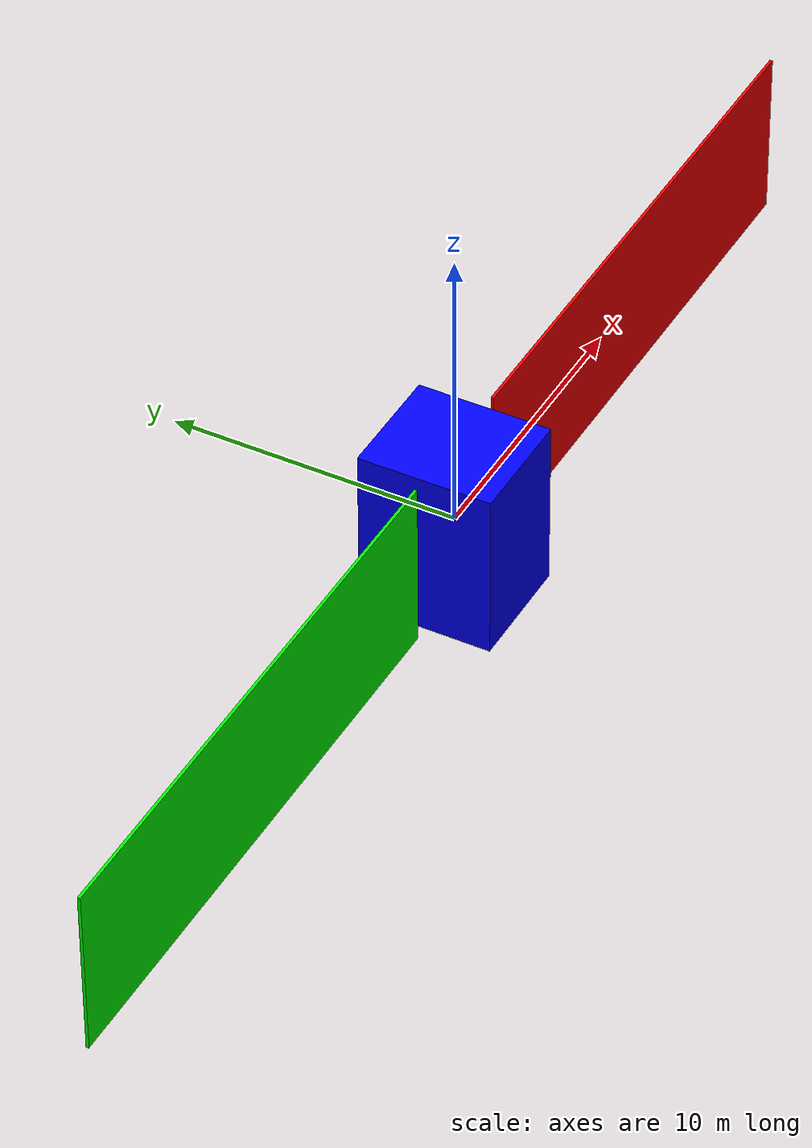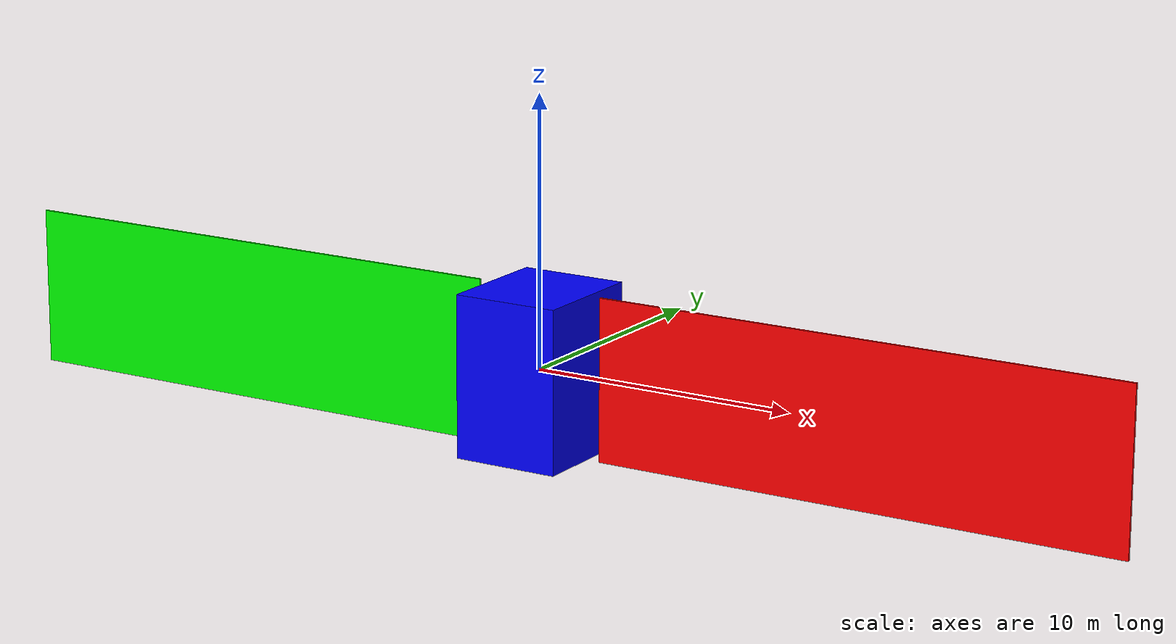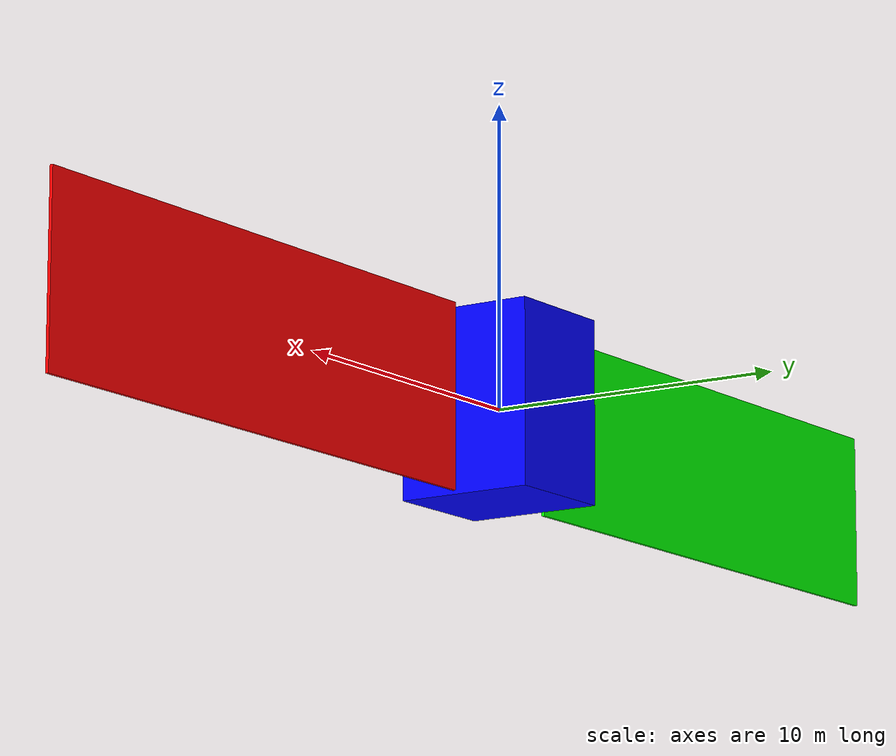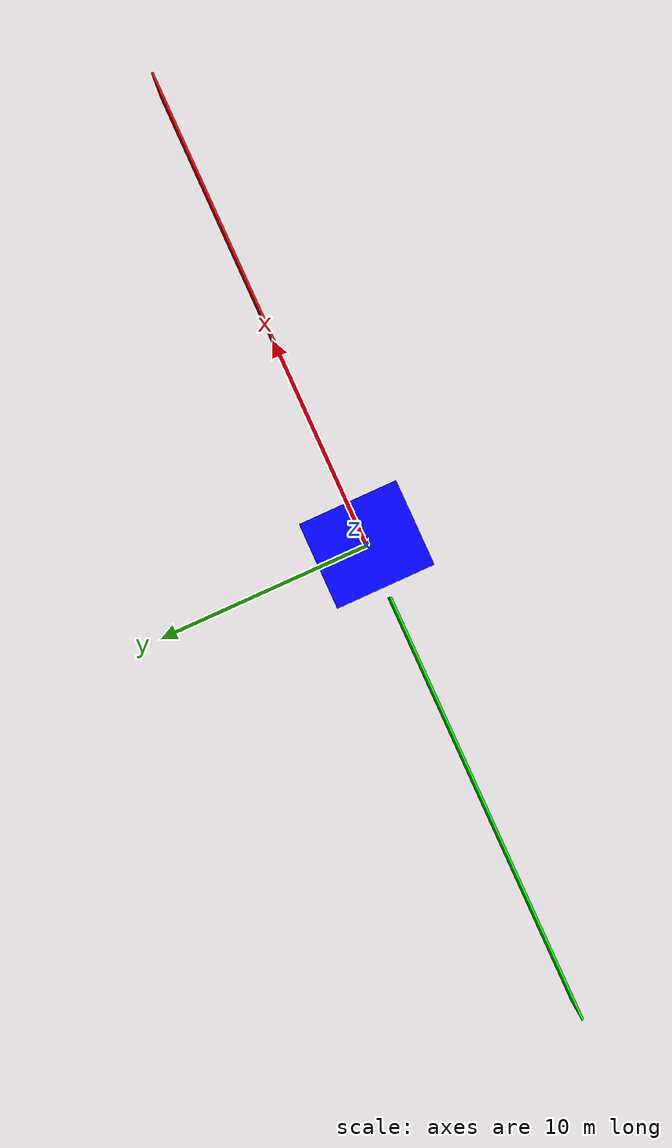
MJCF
<mujoco model="SASA">
    <compiler angle="degree" coordinate="local" inertiafromgeom="true"/>
    <option gravity="0 0 0" integrator="RK4" timestep="1e-4" />
    <worldbody>
        <body name="satellite" pos="0 0 0.0">
            <joint axis="1 0 0" damping="0.0" name="BASE_DOF" pos="0 0 0" type="free"/>
            <geom mass="2500.0" pos="0 0 0" rgba="0 0 1 1" size="2 2.3 3" type="box"/>
            <camera euler="0 0 0" fovy="60" name="rgb" pos="0 0 5.5"></camera>

            <body name="panelL0" pos="-12.5 0 0.0">
                <joint axis="1 0 0" stiffness="1000" damping="1000.0" name="panelL0_rotate_x" pos="12.5 0 0" type="hinge" limited="true" range="-2 2"/>
                <joint axis="0 1 0" stiffness="1000" damping="1000.0" name="panelL0_rotate_y" pos="12.5 0 0" type="hinge" limited="true" range="-2 2"/>
                <joint axis="0 0 1" stiffness="1000" damping="1000.0" name="panelL0_rotate_z" pos="12.5 0 0" type="hinge" limited="true" range="-10 10"/>
                <geom mass="200.0" rgba="0 1 0 1" size="10 0.05 3" type="box"/>

            </body>
            <body name="panelR0" pos="12.5 0 0.0">
                <joint axis="1 0 0" stiffness="1000" damping="1000.0" name="panelR0_rotate_x" pos="-12.5 0 0" type="hinge" limited="true" range="-2 2"/>
                <joint axis="0 1 0" stiffness="1000" damping="1000.0" name="panelR0_rotate_y" pos="-12.5 0 0" type="hinge" limited="true" range="-2 2"/>
                <joint axis="0 0 1" stiffness="1000" damping="1000.0" name="panelR0_rotate_z" pos="-12.5 0 0" type="hinge" limited="true" range="-10 10"/>
                <geom mass="200.0" rgba="1 0 0 1" size="10 0.05 3" type="box"/>

            </body>
        </body>
    </worldbody>
    <actuator>

        <motor gear="1 0 0 0 0 0" joint="BASE_DOF"/>
        <motor gear="0 1 0 0 0 0" joint="BASE_DOF"/>
        <motor gear="0 0 1 0 0 0" joint="BASE_DOF"/>

        <motor gear="0 0 0 1 0 0" joint="BASE_DOF"/>
        <motor gear="0 0 0 0 1 0" joint="BASE_DOF"/>
        <motor gear="0 0 0 0 0 1" joint="BASE_DOF"/>

        <motor gear="10000" joint="panelL0_rotate_x"/>
        <motor gear="10000" joint="panelL0_rotate_y"/>
        <motor gear="10000" joint="panelL0_rotate_z"/>

        <motor gear="10000" joint="panelR0_rotate_x"/>
        <motor gear="10000" joint="panelR0_rotate_y"/>
        <motor gear="10000" joint="panelR0_rotate_z"/>

    </actuator>
</mujoco>
